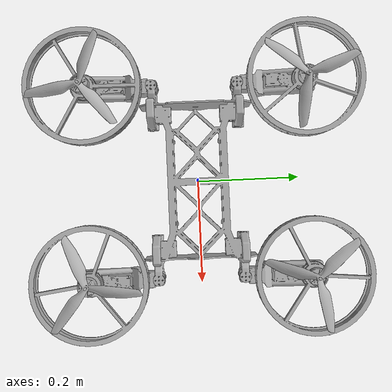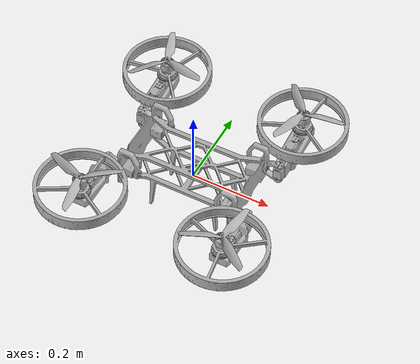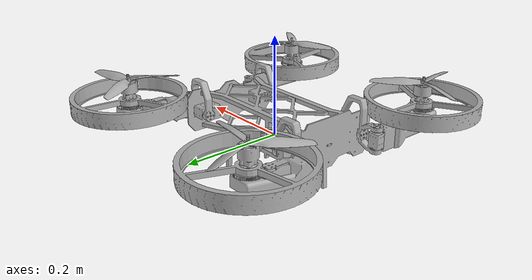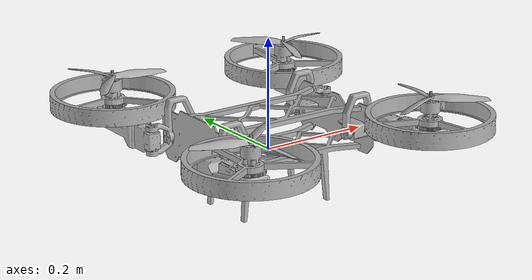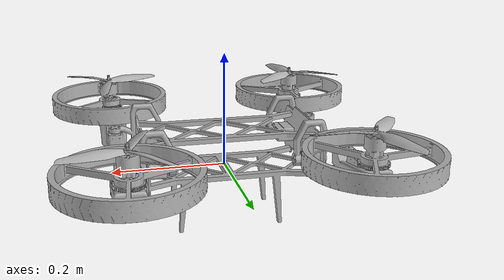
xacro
<?xml version='1.0' encoding='UTF-8'?>
<robot name="morphobot" xmlns:xacro="http://www.ros.org/wiki/xacro">
  <xacro:arg name="sim_mode" default="false"/>
  <link name="base_link" /><joint name="base_joint" type="fixed"><parent link="base_link" /><child link="chassis" /><origin xyz="0 0 0" rpy="0 0 0" /></joint><link name="chassis">
    <inertial>
      <origin xyz="-0.0017859 8.8687E-05 0.0030325" rpy="0 0 0" />
      <mass value="1.3009" />
      <inertia ixx="0.0030792" ixy="6.1049E-08" ixz="-1.3499E-08" iyy="0.0068536" iyz="2.3283E-07" izz="0.008838" />
    </inertial>
    <visual>
      <origin xyz="0 0 0" rpy="0 0 0" />
      <geometry>
        <mesh filename="package://morphobot_urdf/meshes/chassis.STL" />
      </geometry>
      <material name="">
        <color rgba="0.69804 0.69804 0.69804 1" />
      </material>
    </visual>
    <collision>
      <origin xyz="0 0 0" rpy="0 0 0" />
      <geometry>
        <mesh filename="package://morphobot_urdf/meshes/chassis.STL" />
      </geometry>
    </collision>
  </link>
  <link name="servo_bracket_FR">
    <inertial>
      <origin xyz="-0.042924 -4.0721E-06 -0.020009" rpy="0 0 0" />
      <mass value="0.042405" />
      <inertia ixx="3.2812E-05" ixy="-2.9362E-09" ixz="1.0648E-05" iyy="6.4138E-05" iyz="1.9445E-09" izz="3.3214E-05" />
    </inertial>
    <visual>
      <origin xyz="0 0 0" rpy="0 0 0" />
      <geometry>
        <mesh filename="package://morphobot_urdf/meshes/servo_bracket_FR.STL" />
      </geometry>
      <material name="">
        <color rgba="0.69804 0.69804 0.69804 1" />
      </material>
    </visual>
    <collision>
      <origin xyz="0 0 0" rpy="0 0 0" />
      <geometry>
        <mesh filename="package://morphobot_urdf/meshes/servo_bracket_FR.STL" />
      </geometry>
    </collision>
  </link>
  <joint name="hip_FR" type="revolute">
    <origin xyz="-0.101434631039295 0.0823210899942516 0.0304773195684974" rpy="3.14159265358979 0 0" />
    <parent link="chassis" />
    <child link="servo_bracket_FR" />
    <axis xyz="1 0 0" />
    <limit lower="-3.14" upper="3.14" effort="50.0" velocity="5.0" />
  </joint>
  <link name="append_FR">
    <inertial>
      <origin xyz="0.074461 0.0092264 -9.2304E-05" rpy="0 0 0" />
      <mass value="0.27522" />
      <inertia ixx="5.7287E-05" ixy="-3.0586E-05" ixz="3.0784E-08" iyy="0.00027515" iyz="-3.5022E-09" izz="0.00026016" />
    </inertial>
    <visual>
      <origin xyz="0 0 0" rpy="0 0 0" />
      <geometry>
        <mesh filename="package://morphobot_urdf/meshes/append_FR.STL" />
      </geometry>
      <material name="">
        <color rgba="0.69804 0.69804 0.69804 1" />
      </material>
    </visual>
    <collision>
      <origin xyz="0 0 0" rpy="0 0 0" />
      <geometry>
        <mesh filename="package://morphobot_urdf/meshes/append_FR.STL" />
      </geometry>
    </collision>
  </link>
  <joint name="ankle_FR" type="revolute">
    <origin xyz="-0.0840448577552637 0 0" rpy="-1.5707963267949 0 -1.57079616492685" />
    <parent link="servo_bracket_FR" />
    <child link="append_FR" />
    <axis xyz="0 1 0" />
    <limit lower="-3.14" upper="3.14" effort="10.0" velocity="5.0" />
  </joint>
  <link name="wheel_FR">
    <inertial>
      <origin xyz="-2.8588E-15 -0.01465 -1.8152E-14" rpy="0 0 0" />
      <mass value="0.18408" />
      <inertia ixx="0.00089659" ixy="9.929E-19" ixz="7.5935E-16" iyy="0.0017666" iyz="8.4616E-18" izz="0.00089659" />
    </inertial>
    <visual>
      <origin xyz="0 0 0" rpy="0 0 0" />
      <geometry>
        <mesh filename="package://morphobot_urdf/meshes/wheel_FR.STL" />
      </geometry>
      <material name="">
        <color rgba="0.69804 0.69804 0.69804 1" />
      </material>
    </visual>
    <collision>
      <origin xyz="0 0 0" rpy="0 0 0" />
      <geometry>
        <mesh filename="package://morphobot_urdf/meshes/wheel_FR.STL" />
      </geometry>
    </collision>
  </link>
  <joint name="drive_FR" type="continuous">
    <origin xyz="0.127442160253388 0.0254871047178672 -0.000115427389016098" rpy="0 0.899970226771414 3.14159265358979" />
    <parent link="append_FR" />
    <child link="wheel_FR" />
    <axis xyz="0 1 0" />
    <limit effort="10.0" velocity="5.0" />
  </joint>
  <link name="prop_FR">
    <inertial>
      <origin xyz="-4.282E-07 0.007285 -3.5747E-07" rpy="0 0 0" />
      <mass value="0.011584" />
      <inertia ixx="4.6684E-06" ixy="1.0825E-11" ixz="-3.3532E-11" iyy="9.2341E-06" iyz="1.7078E-12" izz="4.6683E-06" />
    </inertial>
    <visual>
      <origin xyz="0 0 0" rpy="0 0 0" />
      <geometry>
        <mesh filename="package://morphobot_urdf/meshes/prop_FR.STL" />
      </geometry>
      <material name="">
        <color rgba="0.69804 0.69804 0.69804 1" />
      </material>
    </visual>
    <collision>
      <origin xyz="0 0 0" rpy="0 0 0" />
      <geometry>
        <mesh filename="package://morphobot_urdf/meshes/prop_FR.STL" />
      </geometry>
    </collision>
  </link>
  <joint name="rotor_FR" type="continuous">
    <origin xyz="0 -0.05 0" rpy="0 -0.757967691843519 3.14159265358979" />
    <parent link="wheel_FR" />
    <child link="prop_FR" />
    <axis xyz="0 1 0" />
    <limit effort="10.0" velocity="5.0" />
  </joint>
  <link name="servo_bracket_FL">
    <inertial>
      <origin xyz="-0.042924 -4.0728E-06 -0.020009" rpy="0 0 0" />
      <mass value="0.042405" />
      <inertia ixx="3.2812E-05" ixy="-2.9364E-09" ixz="1.0648E-05" iyy="6.4138E-05" iyz="1.9444E-09" izz="3.3214E-05" />
    </inertial>
    <visual>
      <origin xyz="0 0 0" rpy="0 0 0" />
      <geometry>
        <mesh filename="package://morphobot_urdf/meshes/servo_bracket_FL.STL" />
      </geometry>
      <material name="">
        <color rgba="0.69804 0.69804 0.69804 1" />
      </material>
    </visual>
    <collision>
      <origin xyz="0 0 0" rpy="0 0 0" />
      <geometry>
        <mesh filename="package://morphobot_urdf/meshes/servo_bracket_FL.STL" />
      </geometry>
    </collision>
  </link>
  <joint name="hip_FL" type="revolute">
    <origin xyz="-0.101434631039295 -0.0823210899942522 0.0304773195684969" rpy="-3.1333675045612 0 0" />
    <parent link="chassis" />
    <child link="servo_bracket_FL" />
    <axis xyz="1 0 0" />
    <limit lower="-3.14" upper="3.14" effort="50.0" velocity="5.0" />
  </joint>
  <link name="append_FL">
    <inertial>
      <origin xyz="-0.074461 -0.0089764 -9.2298E-05" rpy="0 0 0" />
      <mass value="0.27522" />
      <inertia ixx="5.7287E-05" ixy="-3.0586E-05" ixz="-3.0785E-08" iyy="0.00027515" iyz="3.4909E-09" izz="0.00026016" />
    </inertial>
    <visual>
      <origin xyz="0 0 0" rpy="0 0 0" />
      <geometry>
        <mesh filename="package://morphobot_urdf/meshes/append_FL.STL" />
      </geometry>
      <material name="">
        <color rgba="0.69804 0.69804 0.69804 1" />
      </material>
    </visual>
    <collision>
      <origin xyz="0 0 0" rpy="0 0 0" />
      <geometry>
        <mesh filename="package://morphobot_urdf/meshes/append_FL.STL" />
      </geometry>
    </collision>
  </link>
  <joint name="ankle_FL" type="revolute">
    <origin xyz="-0.0840448577552642 0 0" rpy="1.5707963267949 0 -1.57079616537033" />
    <parent link="servo_bracket_FL" />
    <child link="append_FL" />
    <axis xyz="0 1 0" />
    <limit lower="-3.14" upper="3.14" effort="10.0" velocity="5.0" />
  </joint>
  <link name="wheel_FL">
    <inertial>
      <origin xyz="-1.9984E-15 -0.016481 -1.8568E-14" rpy="0 0 0" />
      <mass value="0.18408" />
      <inertia ixx="0.00089659" ixy="1.0385E-18" ixz="7.5768E-16" iyy="0.0017666" iyz="7.7999E-18" izz="0.00089659" />
    </inertial>
    <visual>
      <origin xyz="0 0 0" rpy="0 0 0" />
      <geometry>
        <mesh filename="package://morphobot_urdf/meshes/wheel_FL.STL" />
      </geometry>
      <material name="">
        <color rgba="0.69804 0.69804 0.69804 1" />
      </material>
    </visual>
    <collision>
      <origin xyz="0 0 0" rpy="0 0 0" />
      <geometry>
        <mesh filename="package://morphobot_urdf/meshes/wheel_FL.STL" />
      </geometry>
    </collision>
  </link>
  <joint name="drive_FL" type="continuous">
    <origin xyz="-0.12744216025344 -0.0234058917733765 -0.000115427332497725" rpy="3.14159265358979 1.56205294824498 3.14159265358979" />
    <parent link="append_FL" />
    <child link="wheel_FL" />
    <axis xyz="0 1 0" />
    <limit effort="10.0" velocity="5.0" />
  </joint>
  <link name="prop_FL">
    <inertial>
      <origin xyz="4.0196E-07 0.0091162 2.2698E-07" rpy="0 0 0" />
      <mass value="0.011584" />
      <inertia ixx="4.6679E-06" ixy="-1.1984E-12" ixz="-3.5714E-11" iyy="9.2332E-06" iyz="-3.4861E-12" izz="4.6679E-06" />
    </inertial>
    <visual>
      <origin xyz="0 0 0" rpy="0 0 0" />
      <geometry>
        <mesh filename="package://morphobot_urdf/meshes/prop_FL.STL" />
      </geometry>
      <material name="">
        <color rgba="0.69804 0.69804 0.69804 1" />
      </material>
    </visual>
    <collision>
      <origin xyz="0 0 0" rpy="0 0 0" />
      <geometry>
        <mesh filename="package://morphobot_urdf/meshes/prop_FL.STL" />
      </geometry>
    </collision>
  </link>
  <joint name="rotor_FL" type="continuous">
    <origin xyz="0 -0.05 0" rpy="0 0.256991852749541 -3.14159265358979" />
    <parent link="wheel_FL" />
    <child link="prop_FL" />
    <axis xyz="0 1 0" />
    <limit effort="10.0" velocity="5.0" />
  </joint>
  <link name="servo_bracket_BR">
    <inertial>
      <origin xyz="-0.042924 -4.0721E-06 -0.020009" rpy="0 0 0" />
      <mass value="0.042405" />
      <inertia ixx="3.2812E-05" ixy="-2.9362E-09" ixz="1.0648E-05" iyy="6.4138E-05" iyz="1.9445E-09" izz="3.3214E-05" />
    </inertial>
    <visual>
      <origin xyz="0 0 0" rpy="0 0 0" />
      <geometry>
        <mesh filename="package://morphobot_urdf/meshes/servo_bracket_BR.STL" />
      </geometry>
      <material name="">
        <color rgba="0.69804 0.69804 0.69804 1" />
      </material>
    </visual>
    <collision>
      <origin xyz="0 0 0" rpy="0 0 0" />
      <geometry>
        <mesh filename="package://morphobot_urdf/meshes/servo_bracket_BR.STL" />
      </geometry>
    </collision>
  </link>
  <joint name="hip_BR" type="revolute">
    <origin xyz="0.101434631039295 0.0823210899942516 0.0304773195684974" rpy="-3.14159265358979 0 3.14159265358979" />
    <parent link="chassis" />
    <child link="servo_bracket_BR" />
    <axis xyz="1 0 0" />
    <limit lower="-3.14" upper="3.14" effort="10.0" velocity="5.0" />
  </joint>
  <link name="append_BR">
    <inertial>
      <origin xyz="-0.074461 -0.0090144 -9.2285E-05" rpy="0 0 0" />
      <mass value="0.27522" />
      <inertia ixx="5.7287E-05" ixy="-3.0586E-05" ixz="-3.0775E-08" iyy="0.00027515" iyz="3.4934E-09" izz="0.00026016" />
    </inertial>
    <visual>
      <origin xyz="0 0 0" rpy="0 0 0" />
      <geometry>
        <mesh filename="package://morphobot_urdf/meshes/append_BR.STL" />
      </geometry>
      <material name="">
        <color rgba="0.69804 0.69804 0.69804 1" />
      </material>
    </visual>
    <collision>
      <origin xyz="0 0 0" rpy="0 0 0" />
      <geometry>
        <mesh filename="package://morphobot_urdf/meshes/append_BR.STL" />
      </geometry>
    </collision>
  </link>
  <joint name="ankle_BR" type="revolute">
    <origin xyz="-0.0840448577552636 0 0" rpy="1.5707963713624 0 -1.57079616630448" />
    <parent link="servo_bracket_BR" />
    <child link="append_BR" />
    <axis xyz="0 0.999999999999999 0" />
    <limit lower="-3.14" upper="3.14" effort="10.0" velocity="5.0" />
  </joint>
  <link name="wheel_BR">
    <inertial>
      <origin xyz="-3.33066907387547E-16 0.0153503594702697 -1.9595436384634E-14" rpy="0 0 0" />
      <mass value="0.184080607323592" />
      <inertia ixx="0.000896585517388218" ixy="4.02069493034564E-19" ixz="7.58257118118472E-16" iyy="0.0017665718315411" iyz="8.67939193200404E-18" izz="0.00089658551736539" />
    </inertial>
    <visual>
      <origin xyz="0 0 0" rpy="0 0 0" />
      <geometry>
        <mesh filename="package://morphobot_urdf/meshes/wheel_BR.STL" />
      </geometry>
      <material name="">
        <color rgba="0.698039215686274 0.698039215686274 0.698039215686274 1" />
      </material>
    </visual>
    <collision>
      <origin xyz="0 0 0" rpy="0 0 0" />
      <geometry>
        <mesh filename="package://morphobot_urdf/meshes/wheel_BR.STL" />
      </geometry>
    </collision>
  </link>
  <joint name="drive_BR" type="continuous">
    <origin xyz="-0.127442160253548 -0.0552371047230112 -0.000115424751671311" rpy="0 -1.47982271240139 0" />
    <parent link="append_BR" />
    <child link="wheel_BR" />
    <axis xyz="0 1 0" />
    <limit effort="10.0" velocity="5.0" />
  </joint>
  <link name="prop_BR">
    <inertial>
      <origin xyz="1.06331759147649E-07 0.00521171729784679 -5.22503755318038E-07" rpy="0 0 0" />
      <mass value="0.0115842243590244" />
      <inertia ixx="4.66797551376452E-06" ixy="-1.54937188217584E-12" ixz="2.48197141634751E-12" iyy="9.23323605990238E-06" iyz="3.59842727954327E-12" izz="4.66788844108918E-06" />
    </inertial>
    <visual>
      <origin xyz="0 0 0" rpy="0 0 0" />
      <geometry>
        <mesh filename="package://morphobot_urdf/meshes/prop_BR.STL" />
      </geometry>
      <material name="">
        <color rgba="0.698039215686274 0.698039215686274 0.698039215686274 1" />
      </material>
    </visual>
    <collision>
      <origin xyz="0 0 0" rpy="0 0 0" />
      <geometry>
        <mesh filename="package://morphobot_urdf/meshes/prop_BR.STL" />
      </geometry>
    </collision>
  </link>
  <joint name="rotor_BR" type="continuous">
    <origin xyz="0 -0.0228606222152567 0" rpy="0 -0.2616614599998 3.14159265358979" />
    <parent link="wheel_BR" />
    <child link="prop_BR" />
    <axis xyz="0 1 0" />
    <limit effort="10.0" velocity="5.0" />
  </joint>
  <link name="servo_bracket_BL">
    <inertial>
      <origin xyz="-0.0429244474612721 -4.07280103459362E-06 -0.0200092449338251" rpy="0 0 0" />
      <mass value="0.0424047053525931" />
      <inertia ixx="3.2812278167878E-05" ixy="-2.93638517942673E-09" ixz="1.06477878797441E-05" iyy="6.41382538057818E-05" iyz="1.94439198116056E-09" izz="3.32144065957128E-05" />
    </inertial>
    <visual>
      <origin xyz="0 0 0" rpy="0 0 0" />
      <geometry>
        <mesh filename="package://morphobot_urdf/meshes/servo_bracket_BL.STL" />
      </geometry>
      <material name="">
        <color rgba="0.698039215686274 0.698039215686274 0.698039215686274 1" />
      </material>
    </visual>
    <collision>
      <origin xyz="0 0 0" rpy="0 0 0" />
      <geometry>
        <mesh filename="package://morphobot_urdf/meshes/servo_bracket_BL.STL" />
      </geometry>
    </collision>
  </link>
  <joint name="hip_BL" type="revolute">
    <origin xyz="0.1014346310393 -0.0823210899942516 0.0304773195684969" rpy="-3.1333675045612 0 3.14159265358979" />
    <parent link="chassis" />
    <child link="servo_bracket_BL" />
    <axis xyz="1 0 0" />
    <limit lower="-3.14" upper="3.14" effort="10.0" velocity="5.0" />
  </joint>
  <link name="append_BL">
    <inertial>
      <origin xyz="-0.0741523700092663 -0.0087483244558446 -9.21354746105385E-05" rpy="0 0 0" />
      <mass value="0.273625653121204" />
      <inertia ixx="5.72313511482587E-05" ixy="-3.05857846799223E-05" ixz="-3.07777683577657E-08" iyy="0.00027504471638492" iyz="3.47767582142496E-09" izz="0.000260105497241212" />
    </inertial>
    <visual>
      <origin xyz="0 0 0" rpy="0 0 0" />
      <geometry>
        <mesh filename="package://morphobot_urdf/meshes/append_BL.STL" />
      </geometry>
      <material name="">
        <color rgba="0.698039215686274 0.698039215686274 0.698039215686274 1" />
      </material>
    </visual>
    <collision>
      <origin xyz="0 0 0" rpy="0 0 0" />
      <geometry>
        <mesh filename="package://morphobot_urdf/meshes/append_BL.STL" />
      </geometry>
    </collision>
  </link>
  <joint name="ankle_BL" type="revolute">
    <origin xyz="-0.0840448577552638 0 0" rpy="1.5707963267949 0 1.57079648821944" />
    <parent link="servo_bracket_BL" />
    <child link="append_BL" />
    <axis xyz="0 1 0" />
    <limit lower="-3.14" upper="3.14" effort="10.0" velocity="5.0" />
  </joint>
  <link name="wheel_BL">
    <inertial>
      <origin xyz="-2.92821322744885E-15 -0.0146476109832033 -1.49880108324396E-14" rpy="0 0 0" />
      <mass value="0.184080607323591" />
      <inertia ixx="0.000896585517388205" ixy="8.91925693458778E-19" ixz="7.62763333397865E-16" iyy="0.00176657183154109" iyz="8.75705012518858E-18" izz="0.000896585517365392" />
    </inertial>
    <visual>
      <origin xyz="0 0 0" rpy="0 0 0" />
      <geometry>
        <mesh filename="package://morphobot_urdf/meshes/wheel_BL.STL" />
      </geometry>
      <material name="">
        <color rgba="0.698039215686274 0.698039215686274 0.698039215686274 1" />
      </material>
    </visual>
    <collision>
      <origin xyz="0 0 0" rpy="0 0 0" />
      <geometry>
        <mesh filename="package://morphobot_urdf/meshes/wheel_BL.STL" />
      </geometry>
    </collision>
  </link>
  <joint name="drive_BL" type="continuous">
    <origin xyz="-0.12744216025344 -0.0252391342643944 -0.000115427332497781" rpy="0 0.386946659841151 0" />
    <parent link="append_BL" />
    <child link="wheel_BL" />
    <axis xyz="0 1 0" />
    <limit effort="10.0" velocity="5.0" />
  </joint>
  <link name="prop_BL">
    <inertial>
      <origin xyz="-3.72960129446653E-07 0.00728299709339199 2.74126777582984E-07" rpy="0 0 0" />
      <mass value="0.0115839475383225" />
      <inertia ixx="4.66828698275567E-06" ixy="-1.82227984890525E-13" ixz="3.57853129432066E-11" iyy="9.23403739485275E-06" iyz="-1.39160282645356E-11" izz="4.66837034300114E-06" />
    </inertial>
    <visual>
      <origin xyz="0 0 0" rpy="0 0 0" />
      <geometry>
        <mesh filename="package://morphobot_urdf/meshes/prop_BL.STL" />
      </geometry>
      <material name="">
        <color rgba="0.698039215686274 0.698039215686274 0.698039215686274 1" />
      </material>
    </visual>
    <collision>
      <origin xyz="0 0 0" rpy="0 0 0" />
      <geometry>
        <mesh filename="package://morphobot_urdf/meshes/prop_BL.STL" />
      </geometry>
    </collision>
  </link>
  <joint name="rotor_BL" type="continuous">
    <origin xyz="0 -0.05 0" rpy="-3.14159265358979 1.31719432919392 0" />
    <parent link="wheel_BL" />
    <child link="prop_BL" />
    <axis xyz="0 1 0" />
    <limit effort="10.0" velocity="5.0" />
  </joint>
<ros2_control name="GazeboSystem" type="system">
  <hardware>
    <plugin>ign_ros2_control/IgnitionSystem</plugin>
  </hardware>

  <!-- Hip joints -->
  <joint name="hip_FL">
    <command_interface name="position"/>
    <state_interface name="position"/>
    <state_interface name="velocity"/>
  </joint>

  <joint name="hip_FR">
    <command_interface name="position"/>
    <state_interface name="position"/>
    <state_interface name="velocity"/>
  </joint>

  <joint name="hip_BL">
    <command_interface name="position"/>
    <state_interface name="position"/>
    <state_interface name="velocity"/>
  </joint>

  <joint name="hip_BR">
    <command_interface name="position"/>
    <state_interface name="position"/>
    <state_interface name="velocity"/>
  </joint>

  <!-- Ankle joints -->
  <joint name="ankle_FL">
    <command_interface name="position"/>
    <state_interface name="position"/>
    <state_interface name="velocity"/>
  </joint>

  <joint name="ankle_FR">
    <command_interface name="position"/>
    <state_interface name="position"/>
    <state_interface name="velocity"/>
  </joint>

  <joint name="ankle_BL">
    <command_interface name="position"/>
    <state_interface name="position"/>
    <state_interface name="velocity"/>
  </joint>

  <joint name="ankle_BR">
    <command_interface name="position"/>
    <state_interface name="position"/>
    <state_interface name="velocity"/>
  </joint>

  <!-- Drive wheels -->
  <joint name="drive_FL">
    <command_interface name="velocity"/>
    <state_interface name="velocity"/>
  </joint>

  <joint name="drive_FR">
    <command_interface name="velocity"/>
    <state_interface name="velocity"/>
  </joint>

  <joint name="drive_BL">
    <command_interface name="velocity"/>
    <state_interface name="velocity"/>
  </joint>

  <joint name="drive_BR">
    <command_interface name="velocity"/>
    <state_interface name="velocity"/>
  </joint>

</ros2_control>

  <gazebo>
    <plugin
      filename="libign_ros2_control-system.so"
      name="ign_ros2_control::IgnitionROS2ControlPlugin">
      <parameters>$(find morphobot_urdf)/config/sim_controllers.yaml</parameters>
    </plugin>
  </gazebo>
</robot>
